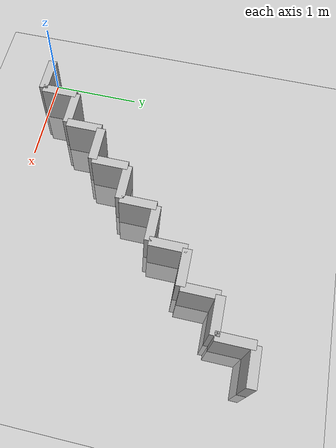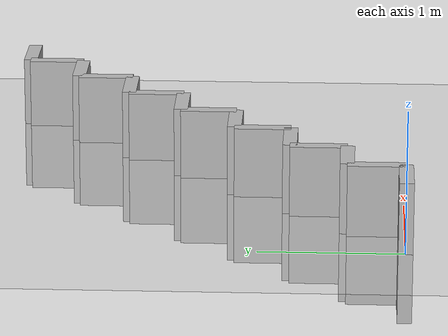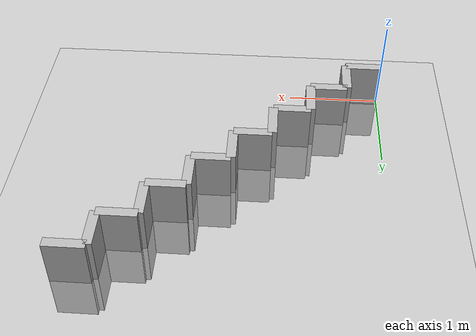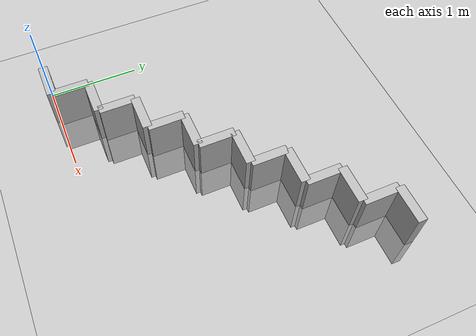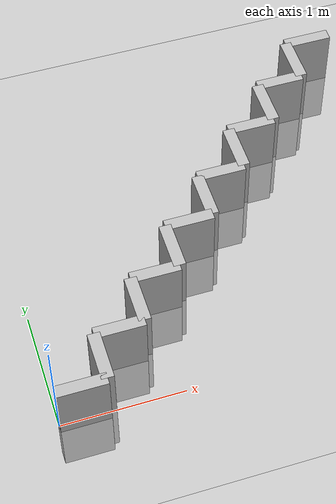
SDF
<?xml version="1.0" ?>
<sdf version="1.6">
  <world name="default">
    <include>
      <uri>model://ground_plane</uri>
    </include>
    <include>
      <uri>model://sun</uri>
    </include>

    <model name="wall_0">
      <static>true</static>
      <link name="link">
        <pose>0.2 0 0 0 0 0</pose>
        <collision name="collision">
          <geometry>
            <box>
              <size>0.4 0.1 1.0</size>
            </box>
          </geometry>
        </collision>
        <visual name="visual">
          <geometry>
            <box>
              <size>0.4 0.1 1.0</size>
            </box>
          </geometry>
        </visual>
      </link>
    </model>

    <model name="wall_1">
      <static>true</static>
      <link name="link">
        <pose>0.4 0.2 0 0 0 1.57</pose>
        <collision name="collision">
          <geometry>
            <box>
              <size>0.4 0.1 1.0</size>
            </box>
          </geometry>
        </collision>
        <visual name="visual">
          <geometry>
            <box>
              <size>0.4 0.1 1.0</size>
            </box>
          </geometry>
        </visual>
      </link>
    </model>

    <model name="wall_2">
      <static>true</static>
      <link name="link">
        <pose>0.6000000000000001 0.4 0 0 0 0</pose>
        <collision name="collision">
          <geometry>
            <box>
              <size>0.4 0.1 1.0</size>
            </box>
          </geometry>
        </collision>
        <visual name="visual">
          <geometry>
            <box>
              <size>0.4 0.1 1.0</size>
            </box>
          </geometry>
        </visual>
      </link>
    </model>

    <model name="wall_3">
      <static>true</static>
      <link name="link">
        <pose>0.8 0.6000000000000001 0 0 0 1.57</pose>
        <collision name="collision">
          <geometry>
            <box>
              <size>0.4 0.1 1.0</size>
            </box>
          </geometry>
        </collision>
        <visual name="visual">
          <geometry>
            <box>
              <size>0.4 0.1 1.0</size>
            </box>
          </geometry>
        </visual>
      </link>
    </model>

    <model name="wall_4">
      <static>true</static>
      <link name="link">
        <pose>1.0 0.8 0 0 0 0</pose>
        <collision name="collision">
          <geometry>
            <box>
              <size>0.4 0.1 1.0</size>
            </box>
          </geometry>
        </collision>
        <visual name="visual">
          <geometry>
            <box>
              <size>0.4 0.1 1.0</size>
            </box>
          </geometry>
        </visual>
      </link>
    </model>

    <model name="wall_5">
      <static>true</static>
      <link name="link">
        <pose>1.2 1.0 0 0 0 1.57</pose>
        <collision name="collision">
          <geometry>
            <box>
              <size>0.4 0.1 1.0</size>
            </box>
          </geometry>
        </collision>
        <visual name="visual">
          <geometry>
            <box>
              <size>0.4 0.1 1.0</size>
            </box>
          </geometry>
        </visual>
      </link>
    </model>

    <model name="wall_6">
      <static>true</static>
      <link name="link">
        <pose>1.4 1.2 0 0 0 0</pose>
        <collision name="collision">
          <geometry>
            <box>
              <size>0.4 0.1 1.0</size>
            </box>
          </geometry>
        </collision>
        <visual name="visual">
          <geometry>
            <box>
              <size>0.4 0.1 1.0</size>
            </box>
          </geometry>
        </visual>
      </link>
    </model>

    <model name="wall_7">
      <static>true</static>
      <link name="link">
        <pose>1.5999999999999999 1.4 0 0 0 1.57</pose>
        <collision name="collision">
          <geometry>
            <box>
              <size>0.4 0.1 1.0</size>
            </box>
          </geometry>
        </collision>
        <visual name="visual">
          <geometry>
            <box>
              <size>0.4 0.1 1.0</size>
            </box>
          </geometry>
        </visual>
      </link>
    </model>

    <model name="wall_8">
      <static>true</static>
      <link name="link">
        <pose>1.7999999999999998 1.5999999999999999 0 0 0 0</pose>
        <collision name="collision">
          <geometry>
            <box>
              <size>0.4 0.1 1.0</size>
            </box>
          </geometry>
        </collision>
        <visual name="visual">
          <geometry>
            <box>
              <size>0.4 0.1 1.0</size>
            </box>
          </geometry>
        </visual>
      </link>
    </model>

    <model name="wall_9">
      <static>true</static>
      <link name="link">
        <pose>1.9999999999999998 1.7999999999999998 0 0 0 1.57</pose>
        <collision name="collision">
          <geometry>
            <box>
              <size>0.4 0.1 1.0</size>
            </box>
          </geometry>
        </collision>
        <visual name="visual">
          <geometry>
            <box>
              <size>0.4 0.1 1.0</size>
            </box>
          </geometry>
        </visual>
      </link>
    </model>

    <model name="wall_10">
      <static>true</static>
      <link name="link">
        <pose>2.1999999999999997 1.9999999999999998 0 0 0 0</pose>
        <collision name="collision">
          <geometry>
            <box>
              <size>0.4 0.1 1.0</size>
            </box>
          </geometry>
        </collision>
        <visual name="visual">
          <geometry>
            <box>
              <size>0.4 0.1 1.0</size>
            </box>
          </geometry>
        </visual>
      </link>
    </model>

    <model name="wall_11">
      <static>true</static>
      <link name="link">
        <pose>2.4 2.1999999999999997 0 0 0 1.57</pose>
        <collision name="collision">
          <geometry>
            <box>
              <size>0.4 0.1 1.0</size>
            </box>
          </geometry>
        </collision>
        <visual name="visual">
          <geometry>
            <box>
              <size>0.4 0.1 1.0</size>
            </box>
          </geometry>
        </visual>
      </link>
    </model>

    <model name="wall_12">
      <static>true</static>
      <link name="link">
        <pose>2.6 2.4 0 0 0 0</pose>
        <collision name="collision">
          <geometry>
            <box>
              <size>0.4 0.1 1.0</size>
            </box>
          </geometry>
        </collision>
        <visual name="visual">
          <geometry>
            <box>
              <size>0.4 0.1 1.0</size>
            </box>
          </geometry>
        </visual>
      </link>
    </model>

    <model name="wall_13">
      <static>true</static>
      <link name="link">
        <pose>2.8000000000000003 2.6 0 0 0 1.57</pose>
        <collision name="collision">
          <geometry>
            <box>
              <size>0.4 0.1 1.0</size>
            </box>
          </geometry>
        </collision>
        <visual name="visual">
          <geometry>
            <box>
              <size>0.4 0.1 1.0</size>
            </box>
          </geometry>
        </visual>
      </link>
    </model>

    <model name="wall_14">
      <static>true</static>
      <link name="link">
        <pose>3.0000000000000004 2.8000000000000003 0 0 0 0</pose>
        <collision name="collision">
          <geometry>
            <box>
              <size>0.4 0.1 1.0</size>
            </box>
          </geometry>
        </collision>
        <visual name="visual">
          <geometry>
            <box>
              <size>0.4 0.1 1.0</size>
            </box>
          </geometry>
        </visual>
      </link>
    </model>

  </world>
</sdf>
